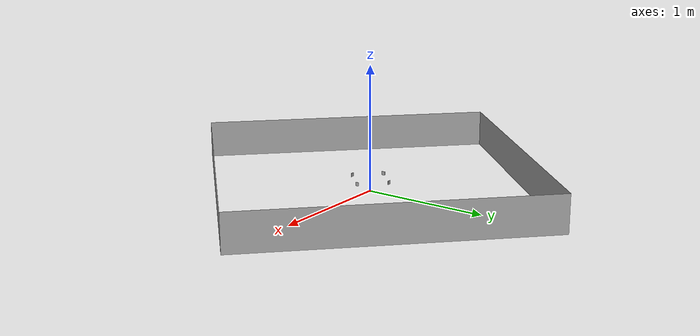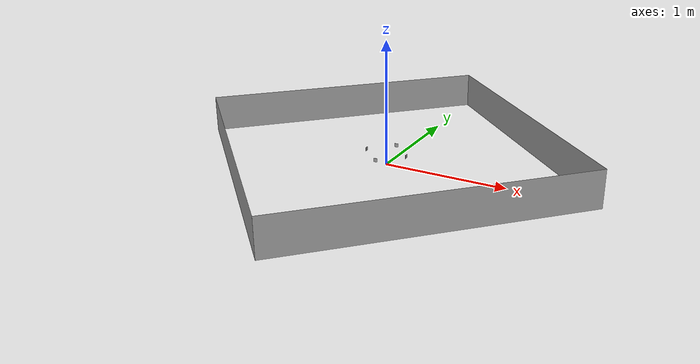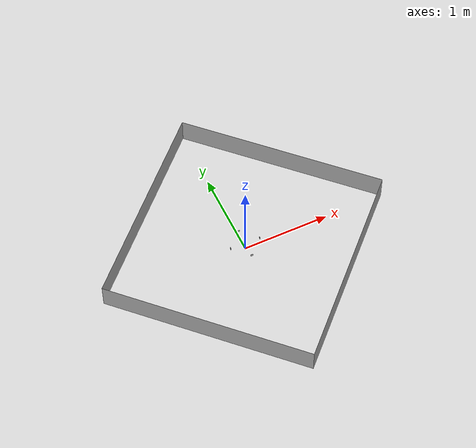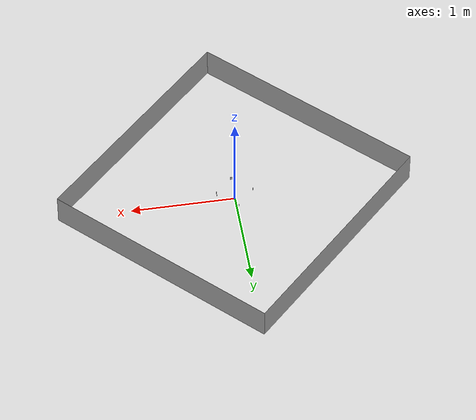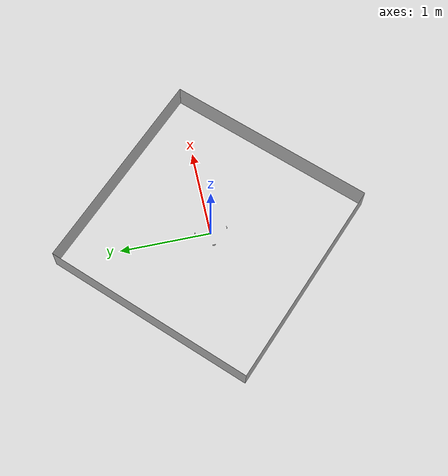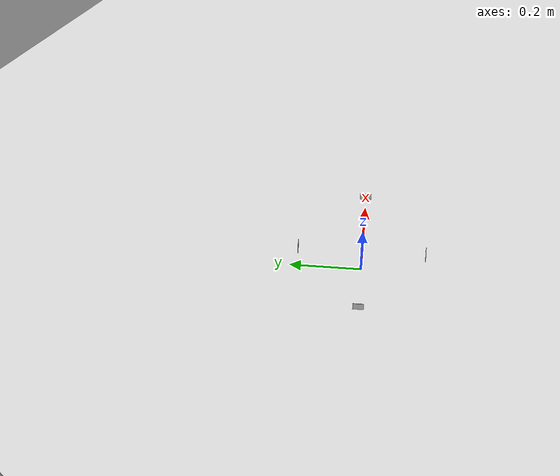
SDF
<sdf version="1.4">
 <world name="onigiri_field">
  <scene><shadows>false</shadows></scene>
  <physics name="ode_100iters" type="ode">
   <real_time_update_rate>1000</real_time_update_rate>
   <max_step_size>0.001</max_step_size>
  </physics>
  <include><uri>model://sun</uri></include>
  <model name="box_0_tag_1">
   <static>true</static>
   <pose>0 0.176 0.1 0 0 0</pose>
   <link name="link">
    <visual name="visual">
     <geometry><box><size>0.03 0.001 0.03</size></box></geometry>
     <material><script><uri>model://tags</uri><name>0001</name></script></material>
    </visual>
   </link>
  </model>
  <model name="box_0_tag_2">
   <static>true</static>
   <pose>0 -0.176 0.1 0 0 0</pose>
   <link name="link">
    <visual name="visual">
     <geometry><box><size>0.03 0.001 0.03</size></box></geometry>
     <material><script><uri>model://tags</uri><name>0002</name></script></material>
    </visual>
   </link>
  </model>
  <model name="box_0_tag_3">
   <static>true</static>
   <pose>0.176 0 0.1 0 0 1.571</pose>
   <link name="link">
    <visual name="visual">
     <geometry><box><size>0.03 0.001 0.03</size></box></geometry>
     <material><script><uri>model://tags</uri><name>0003</name></script></material>
    </visual>
   </link>
  </model>
  <model name="box_0_tag_4">
   <static>true</static>
   <pose>-0.176 0 0.1 0 0 1.571</pose>
   <link name="link">
    <visual name="visual">
     <geometry><box><size>0.03 0.001 0.03</size></box></geometry>
     <material><script><uri>model://tags</uri><name>0004</name></script></material>
    </visual>
   </link>
  </model>
  <model name="wall_1">
   <static>true</static>
   <pose>0.8485 0.8485 0.15 0 0 -0.785398163397</pose>
   <link name="link">
    <collision name="visual"><geometry><box><size>2.39992041535 0.0001 0.3</size></box></geometry></collision>
    <visual name="visual">
     <geometry><box><size>2.39992041535 0.0001 0.3</size></box></geometry>
     <material><script><uri>model://wall</uri><name>wall_1</name></script></material>
    </visual>
   </link>
  </model>
  <model name="wall_2">
   <static>true</static>
   <pose>0.8485 -0.8485 0.15 0 0 -2.35619449019</pose>
   <link name="link">
    <collision name="visual"><geometry><box><size>2.39992041535 0.0001 0.3</size></box></geometry></collision>
    <visual name="visual">
     <geometry><box><size>2.39992041535 0.0001 0.3</size></box></geometry>
     <material><script><uri>model://wall</uri><name>wall_2</name></script></material>
    </visual>
   </link>
  </model>
  <model name="wall_3">
   <static>true</static>
   <pose>-0.8485 -0.8485 0.15 0 0 2.35619449019</pose>
   <link name="link">
    <collision name="visual"><geometry><box><size>2.39992041535 0.0001 0.3</size></box></geometry></collision>
    <visual name="visual">
     <geometry><box><size>2.39992041535 0.0001 0.3</size></box></geometry>
     <material><script><uri>model://wall</uri><name>wall_3</name></script></material>
    </visual>
   </link>
  </model>
  <model name="wall_4">
   <static>true</static>
   <pose>-0.8485 0.8485 0.15 0 0 0.785398163397</pose>
   <link name="link">
    <collision name="visual"><geometry><box><size>2.39992041535 0.0001 0.3</size></box></geometry></collision>
    <visual name="visual">
     <geometry><box><size>2.39992041535 0.0001 0.3</size></box></geometry>
     <material><script><uri>model://wall</uri><name>wall_4</name></script></material>
    </visual>
   </link>
  </model>
 </world>
</sdf>
